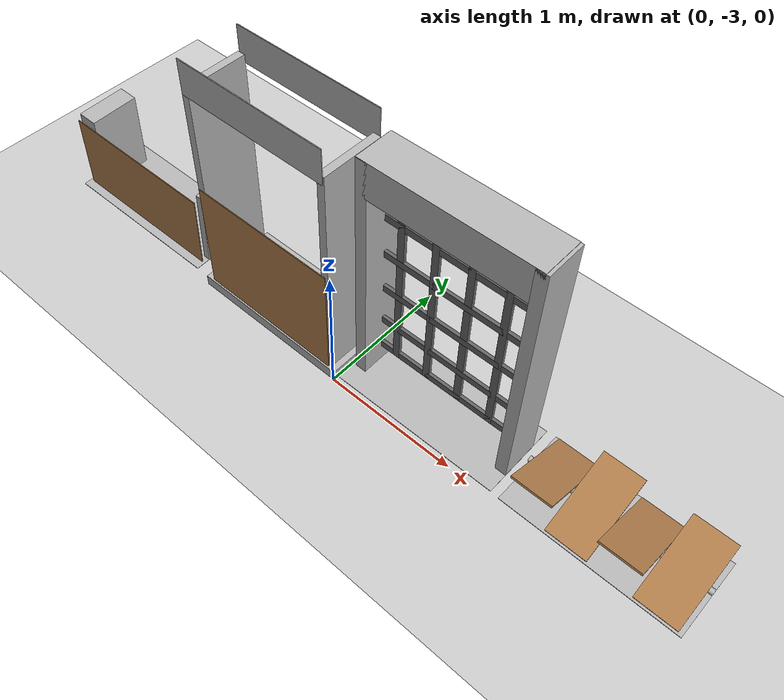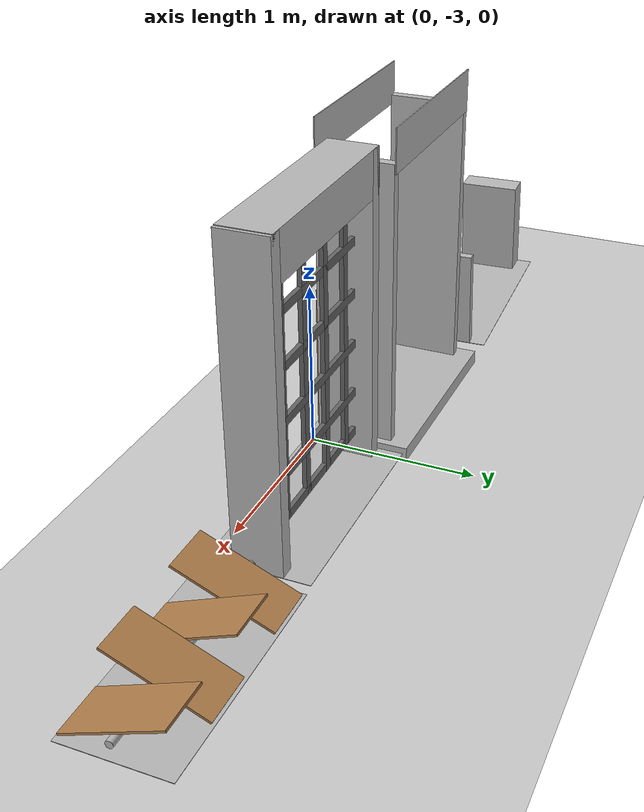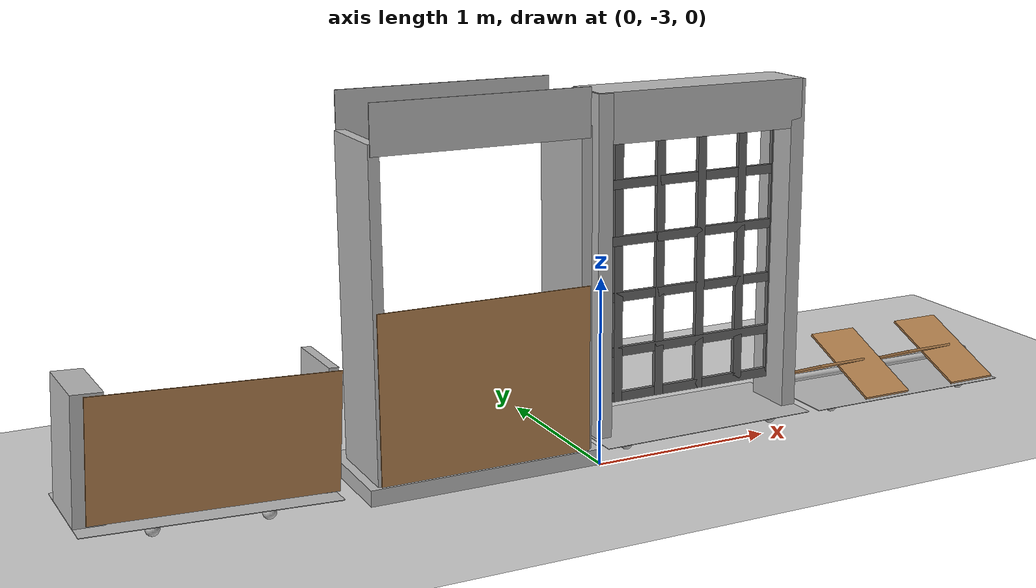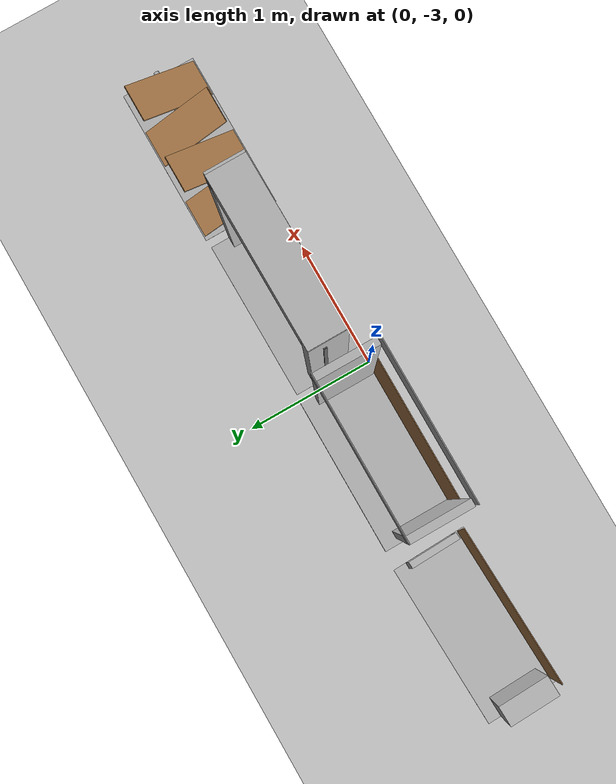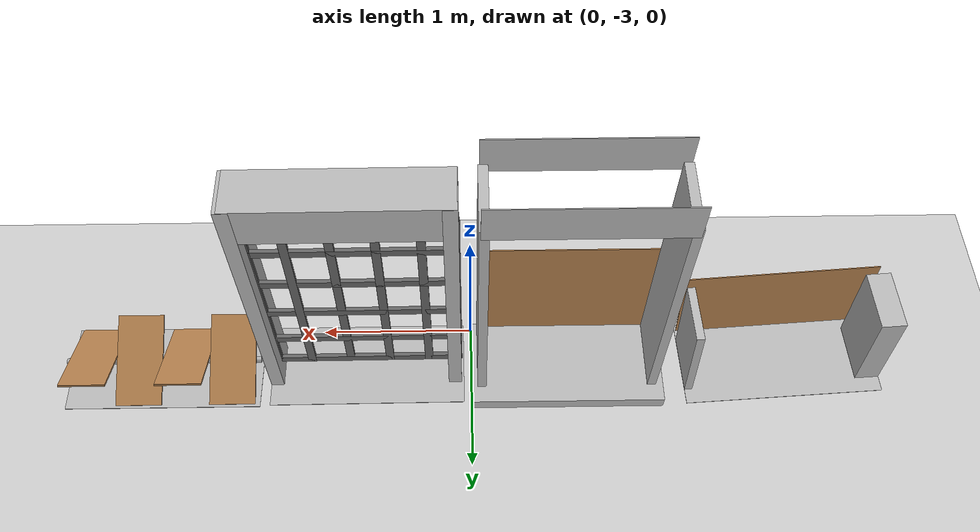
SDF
<sdf version="1.5">
 <world name="default">
  <model name="ground_plane">
   <static>1</static>
   <link name="link">
    <collision name="collision">
     <geometry><plane><normal>0 0 1</normal><size>100 100</size></plane></geometry>
     <surface><friction><ode><mu>100</mu><mu2>50</mu2></ode></friction></surface>
    </collision>
    <visual name="visual">
     <cast_shadows>0</cast_shadows>
     <geometry><plane><normal>0 0 1</normal><size>100 100</size></plane></geometry>
     <material>
      <script><uri>file://media/materials/scripts/gazebo.material</uri><name>Gazebo/Grey</name></script>
     </material>
    </visual>
   </link>
  </model>
  <model name="frc2016_sallyport">
   <link name="base">
    <inertial>
     <mass>50</mass>
     <pose>0 0 0.35406 0 -0 0</pose>
     <inertia><ixx>0.727808</ixx><ixy>0</ixy><ixz>0</ixz><iyy>1.77488</iyy><iyz>0</iyz><izz>1.64109</izz></inertia>
    </inertial>
    <visual name="platform">
     <pose>0 0 0.06974 0 -0 0</pose>
     <geometry><box><size>1.27 0.5969 0.003175</size></box></geometry>
    </visual>
    <collision name="platform">
     <pose>0 0 0.06974 0 -0 0</pose>
     <geometry><box><size>1.27 0.5969 0.003175</size></box></geometry>
    </collision>
    <visual name="left_column">
     <pose>-0.5588 0.00318 0.38876 0 -0 0</pose>
     <geometry><box><size>0.1524 0.38735 0.635</size></box></geometry>
    </visual>
    <collision name="left_column">
     <pose>-0.5588 0.00318 0.38876 0 -0 0</pose>
     <geometry><box><size>0.1524 0.38735 0.635</size></box></geometry>
    </collision>
    <visual name="right_column">
     <pose>0.6096 0.00635 0.38876 0 -0 0</pose>
     <geometry><box><size>0.0508 0.381 0.635</size></box></geometry>
    </visual>
    <collision name="right_column">
     <pose>0.6096 0.00635 0.38876 0 -0 0</pose>
     <geometry><box><size>0.0508 0.381 0.635</size></box></geometry>
    </collision>
    <visual name="castor1">
     <pose>-0.45886 0.15389 0.03487 0 -0 0</pose>
     <geometry><sphere><radius>0.03487</radius></sphere></geometry>
    </visual>
    <collision name="castor1">
     <pose>-0.45886 0.15389 0.03487 0 -0 0</pose>
     <geometry><sphere><radius>0.03487</radius></sphere></geometry>
    </collision>
    <visual name="castor2">
     <pose>-0.28117 -0.22559 0.03487 0 -0 0</pose>
     <geometry><sphere><radius>0.03487</radius></sphere></geometry>
    </visual>
    <collision name="castor2">
     <pose>-0.28117 -0.22559 0.03487 0 -0 0</pose>
     <geometry><sphere><radius>0.03487</radius></sphere></geometry>
    </collision>
    <visual name="castor3">
     <pose>0.27933 -0.2272 0.03487 0 -0 0</pose>
     <geometry><sphere><radius>0.03487</radius></sphere></geometry>
    </visual>
    <collision name="castor3">
     <pose>0.27933 -0.2272 0.03487 0 -0 0</pose>
     <geometry><sphere><radius>0.03487</radius></sphere></geometry>
    </collision>
    <visual name="castor4">
     <pose>0.4571 0.15424 0.03487 0 -0 0</pose>
     <geometry><sphere><radius>0.03487</radius></sphere></geometry>
    </visual>
    <collision name="castor4">
     <pose>0.4571 0.15424 0.03487 0 -0 0</pose>
     <geometry><sphere><radius>0.03487</radius></sphere></geometry>
    </collision>
   </link>
   <link name="door">
    <pose>0.02255 -0.24321 0.40332 0 -0 0</pose>
    <inertial>
     <pose>0 0 0 -1.5707 0 0</pose>
     <mass>2</mass>
     <inertia>
      <ixx>0.0619421</ixx>
      <ixy>0</ixy>
      <ixz>0</ixz>
      <iyy>0.246462</iyy>
      <iyz>0</iyz>
      <izz>0.30839</izz>
     </inertia>
    </inertial>
    <visual name="visual">
     <geometry><box><size>1.21603 0.00635 0.6096</size></box></geometry>
     <material><script><name>Gazebo/WoodFloor</name><uri>__default__</uri></script></material>
    </visual>
    <collision name="collision"><geometry><box><size>1.21603 0.00635 0.6096</size></box></geometry></collision>
   </link>
   <joint name="door_joint" type="revolute">
    <pose>-0.608015 0 0 0 -0 0</pose>
    <parent>base</parent>
    <child>door</child>
    <axis>
     <xyz>0 0 1</xyz>
     <limit><lower>-3.1415</lower><upper>0</upper></limit>
     <use_parent_model_frame>0</use_parent_model_frame>
     <dynamics><spring_reference>0</spring_reference><spring_stiffness>0</spring_stiffness></dynamics>
    </axis>
   </joint>
   <pose>-2.03495 -2.70877 0.023636 0.007784 0.054244 0.033158</pose>
  </model>
  <model name="frc2016_drawbridge">
   <link name="base">
    <inertial>
     <mass>10</mass>
     <pose>0 0 1 0 -0 0</pose>
     <inertia><ixx>3.64907</ixx><ixy>0</ixy><ixz>0</ixz><iyy>4.67075</iyy><iyz>0</iyz><izz>1.66649</izz></inertia>
    </inertial>
    <visual name="platform">
     <pose>0 0 0.0425 0 -0 0</pose>
     <geometry><box><size>1.27 0.5969 0.085</size></box></geometry>
    </visual>
    <collision name="platform">
     <pose>0 0 0.0425 0 -0 0</pose>
     <geometry><box><size>1.27 0.5969 0.085</size></box></geometry>
    </collision>
    <visual name="right_wall">
     <pose>0.55879 0.04444 0.889 0 -0 0</pose>
     <geometry><box><size>0.05715 0.45698 1.77165</size></box></geometry>
    </visual>
    <collision name="right_wall">
     <pose>0.55879 0.04444 0.889 0 -0 0</pose>
     <geometry><box><size>0.05715 0.45698 1.77165</size></box></geometry>
    </collision>
    <visual name="left_wall">
     <pose>-0.55879 0.04444 0.889 0 -0 0</pose>
     <geometry><box><size>0.05715 0.45698 1.77165</size></box></geometry>
    </visual>
    <collision name="left_wall">
     <pose>-0.55879 0.04444 0.889 0 -0 0</pose>
     <geometry><box><size>0.05715 0.45698 1.77165</size></box></geometry>
    </collision>
    <visual name="front_upper_wall">
     <pose>0 0.27611 1.84286 0 -0 0</pose>
     <geometry><box><size>1.1557 0.006347 0.254</size></box></geometry>
    </visual>
    <collision name="front_upper_wall">
     <pose>0 0.27611 1.84286 0 -0 0</pose>
     <geometry><box><size>1.1557 0.006347 0.254</size></box></geometry>
    </collision>
    <visual name="back_upper_wall">
     <pose>0 -0.18722 1.84286 0 -0 0</pose>
     <geometry><box><size>1.1557 0.006347 0.254</size></box></geometry>
    </visual>
    <collision name="back_upper_wall">
     <pose>0 -0.18722 1.84286 0 -0 0</pose>
     <geometry><box><size>1.1557 0.006347 0.254</size></box></geometry>
    </collision>
   </link>
   <link name="bridge">
    <pose>0 0.28245 0.50577 0 -0 0</pose>
    <inertial>
     <mass>2</mass>
     <pose>0 -0.28245 -0.50577 0 -0 0</pose>
     <inertia>
      <ixx>0.139361</ixx>
      <ixy>0</ixy>
      <ixz>0</ixz>
      <iyy>0.357088</iyy>
      <iyz>0</iyz>
      <izz>0.217741</izz>
     </inertia>
    </inertial>
    <visual name="visual">
     <geometry><box><size>1.14298 0.006347 0.9144</size></box></geometry>
     <material><script><name>Gazebo/WoodFloor</name><uri>__default__</uri></script></material>
    </visual>
    <collision name="collision"><geometry><box><size>1.14298 0.006347 0.9144</size></box></geometry></collision>
   </link>
   <joint name="bridge_joint" type="revolute">
    <pose>0 0 -0.4172 0 -0 0</pose>
    <parent>base</parent>
    <child>bridge</child>
    <axis>
     <xyz>1 0 0</xyz>
     <limit><lower>-2</lower><upper>0</upper></limit>
     <use_parent_model_frame>0</use_parent_model_frame>
     <dynamics><spring_reference>0</spring_reference><spring_stiffness>0</spring_stiffness></dynamics>
    </axis>
   </joint>
   <pose>-0.627294 -2.70396 0 0 -1e-06 3.14127</pose>
  </model>
  <model name="frc2016_portcullis_0">
   <link name="base">
    <inertial>
     <mass>50</mass>
     <pose>0 0 1.02941 0 -0 0</pose>
     <inertia><ixx>3.81711</ixx><ixy>0</ixy><ixz>0</ixz><iyy>4.87698</iyy><iyz>0</iyz><izz>1.6283</izz></inertia>
    </inertial>
    <visual name="platform">
     <pose>0 0 0.07284 0 -0 0</pose>
     <geometry><box><size>1.27 0.5842 0.003175</size></box></geometry>
    </visual>
    <collision name="platform">
     <pose>0 0 0.07284 0 -0 0</pose>
     <geometry><box><size>1.27 0.5842 0.003175</size></box></geometry>
    </collision>
    <visual name="left_column">
     <pose>0.59284 0 0.99042 0 -0 0</pose>
     <geometry><box><size>0.08375 0.28575 1.83198</size></box></geometry>
    </visual>
    <collision name="left_column">
     <pose>0.59284 0 0.99042 0 -0 0</pose>
     <geometry><box><size>0.08375 0.28575 1.83198</size></box></geometry>
    </collision>
    <visual name="right_column">
     <pose>-0.57759 0 0.99042 0 -0 0</pose>
     <geometry><box><size>0.08375 0.28575 1.83198</size></box></geometry>
    </visual>
    <collision name="right_column">
     <pose>-0.57759 0 0.99042 0 -0 0</pose>
     <geometry><box><size>0.08375 0.28575 1.83198</size></box></geometry>
    </collision>
    <visual name="top">
     <pose>-0.00034 0 1.77722 0 -0 0</pose>
     <geometry><box><size>1.22962 0.28575 0.26657</size></box></geometry>
    </visual>
    <collision name="top">
     <pose>-0.00034 0 1.77722 0 -0 0</pose>
     <geometry><box><size>1.22962 0.28575 0.26657</size></box></geometry>
    </collision>
    <visual name="castor1">
     <pose>-0.45651 -0.16234 0.03272 0 -0 0</pose>
     <geometry><sphere><radius>0.03272</radius></sphere></geometry>
    </visual>
    <collision name="castor1">
     <pose>-0.45651 -0.16234 0.03272 0 -0 0</pose>
     <geometry><sphere><radius>0.03272</radius></sphere></geometry>
    </collision>
    <visual name="castor2">
     <pose>-0.27883 0.21836 0.03272 0 -0 0</pose>
     <geometry><sphere><radius>0.03272</radius></sphere></geometry>
    </visual>
    <collision name="castor2">
     <pose>-0.27883 0.21836 0.03272 0 -0 0</pose>
     <geometry><sphere><radius>0.03272</radius></sphere></geometry>
    </collision>
    <visual name="castor3">
     <pose>0.28083 0.21906 0.03272 0 -0 0</pose>
     <geometry><sphere><radius>0.03272</radius></sphere></geometry>
    </visual>
    <collision name="castor3">
     <pose>0.28083 0.21906 0.03272 0 -0 0</pose>
     <geometry><sphere><radius>0.03272</radius></sphere></geometry>
    </collision>
    <visual name="castor4">
     <pose>0.45871 -0.16186 0.03272 0 -0 0</pose>
     <geometry><sphere><radius>0.03272</radius></sphere></geometry>
    </visual>
    <collision name="castor4">
     <pose>0.45871 -0.16186 0.03272 0 -0 0</pose>
     <geometry><sphere><radius>0.03272</radius></sphere></geometry>
    </collision>
   </link>
   <link name="gate">
    <pose>-0.0287 0.02885 0.93327 0 -0 0</pose>
    <inertial>
     <mass>2</mass>
     <inertia><ixx>3.81711</ixx><ixy>0</ixy><ixz>0</ixz><iyy>4.87698</iyy><iyz>0</iyz><izz>1.6283</izz></inertia>
    </inertial>
    <collision name="collision"><geometry><box><size>1.1938 0.02496 1.45732</size></box></geometry></collision>
    <visual name="horz_1">
     <pose>0 0 -0.70326 0 -0 0</pose>
     <geometry><box><size>1.1938 0.02496 0.0508</size></box></geometry>
     <material><ambient>0.4 0.4 0.4 1</ambient><diffuse>0.4 0.4 0.4 1</diffuse></material>
    </visual>
    <visual name="horz_2">
     <pose>0 0 -0.44926 0 -0 0</pose>
     <geometry><box><size>1.1938 0.02496 0.0508</size></box></geometry>
     <material><ambient>0.4 0.4 0.4 1</ambient><diffuse>0.4 0.4 0.4 1</diffuse></material>
    </visual>
    <visual name="horz_3">
     <pose>0 0 -0.14517 0 -0 0</pose>
     <geometry><box><size>1.1938 0.02496 0.0508</size></box></geometry>
     <material><ambient>0.4 0.4 0.4 1</ambient><diffuse>0.4 0.4 0.4 1</diffuse></material>
    </visual>
    <visual name="horz_4">
     <pose>0 0 0.16034 0 -0 0</pose>
     <geometry><box><size>1.1938 0.02496 0.0508</size></box></geometry>
     <material><ambient>0.4 0.4 0.4 1</ambient><diffuse>0.4 0.4 0.4 1</diffuse></material>
    </visual>
    <visual name="horz_5">
     <pose>0 0 0.46514 0 -0 0</pose>
     <geometry><box><size>1.1938 0.02496 0.0508</size></box></geometry>
     <material><ambient>0.4 0.4 0.4 1</ambient><diffuse>0.4 0.4 0.4 1</diffuse></material>
    </visual>
    <visual name="horz_6">
     <pose>0 0 0.72994 0 -0 0</pose>
     <geometry><box><size>1.1938 0.02496 0.0508</size></box></geometry>
     <material><ambient>0.4 0.4 0.4 1</ambient><diffuse>0.4 0.4 0.4 1</diffuse></material>
    </visual>
    <visual name="vert_1">
     <pose>-0.58448 0 0 0 -0 0</pose>
     <geometry><box><size>0.02495 0.02496 1.45732</size></box></geometry>
     <material><ambient>0.4 0.4 0.4 1</ambient><diffuse>0.4 0.4 0.4 1</diffuse></material>
    </visual>
    <visual name="vert_2">
     <pose>-0.38128 0 0 0 -0 0</pose>
     <geometry><box><size>0.0508 0.02496 1.45732</size></box></geometry>
     <material><ambient>0.4 0.4 0.4 1</ambient><diffuse>0.4 0.4 0.4 1</diffuse></material>
    </visual>
    <visual name="vert_3">
     <pose>-0.12728 0 0 0 -0 0</pose>
     <geometry><box><size>0.0508 0.02496 1.45732</size></box></geometry>
     <material><ambient>0.4 0.4 0.4 1</ambient><diffuse>0.4 0.4 0.4 1</diffuse></material>
    </visual>
    <visual name="vert_4">
     <pose>0.12672 0 0 0 -0 0</pose>
     <geometry><box><size>0.0508 0.02496 1.45732</size></box></geometry>
     <material><ambient>0.4 0.4 0.4 1</ambient><diffuse>0.4 0.4 0.4 1</diffuse></material>
    </visual>
    <visual name="vert_5">
     <pose>0.38072 0 0 0 -0 0</pose>
     <geometry><box><size>0.0508 0.02496 1.45732</size></box></geometry>
     <material><ambient>0.4 0.4 0.4 1</ambient><diffuse>0.4 0.4 0.4 1</diffuse></material>
    </visual>
    <visual name="vert_6">
     <pose>0.58392 0 0 0 -0 0</pose>
     <geometry><box><size>0.02495 0.02496 1.45732</size></box></geometry>
     <material><ambient>0.4 0.4 0.4 1</ambient><diffuse>0.4 0.4 0.4 1</diffuse></material>
    </visual>
   </link>
   <joint name="joint" type="prismatic">
    <parent>base</parent>
    <child>gate</child>
    <axis>
     <xyz>0 0 1</xyz>
     <limit><lower>0</lower><upper>1</upper></limit>
     <use_parent_model_frame>0</use_parent_model_frame>
     <dynamics><spring_reference>0</spring_reference><spring_stiffness>0</spring_stiffness></dynamics>
    </axis>
   </joint>
   <pose>0.684433 -2.70317 0 1e-06 -0 0.005163</pose>
  </model>
  <model name="frc2016_chevaldefrise">
   <link name="base">
    <inertial>
     <mass>10</mass>
     <pose>0 0 0.15672 0 -0 0</pose>
     <inertia><ixx>0.380221</ixx><ixy>0</ixy><ixz>0</ixz><iyy>1.43365</iyy><iyz>0</iyz><izz>1.64745</izz></inertia>
    </inertial>
    <visual name="platform">
     <pose>0 0 0.06968 0 -0 0</pose>
     <geometry><box><size>1.27 0.5969 0.003175</size></box></geometry>
    </visual>
    <collision name="platform">
     <pose>0 0 0.06968 0 -0 0</pose>
     <geometry><box><size>1.27 0.5969 0.003175</size></box></geometry>
    </collision>
    <visual name="bar">
     <pose>0 0 0.16855 0 1.5707 0</pose>
     <geometry><cylinder><radius>0.02108</radius><length>1.273</length></cylinder></geometry>
    </visual>
    <collision name="bar">
     <pose>0 0 0.16855 0 1.5707 0</pose>
     <geometry><cylinder><radius>0.02108</radius><length>1.27</length></cylinder></geometry>
    </collision>
    <visual name="castor1">
     <pose>-0.45653 -0.16581 0.03175 0 -0 0</pose>
     <geometry><sphere><radius>0.03175</radius></sphere></geometry>
    </visual>
    <collision name="castor1">
     <pose>-0.45653 -0.16581 0.03175 0 -0 0</pose>
     <geometry><sphere><radius>0.03175</radius></sphere></geometry>
    </collision>
    <visual name="castor2">
     <pose>-0.27855 0.21408 0.03175 0 -0 0</pose>
     <geometry><sphere><radius>0.03175</radius></sphere></geometry>
    </visual>
    <collision name="castor2">
     <pose>-0.27855 0.21408 0.03175 0 -0 0</pose>
     <geometry><sphere><radius>0.03175</radius></sphere></geometry>
    </collision>
    <visual name="castor3">
     <pose>0.28191 0.21419 0.03175 0 -0 0</pose>
     <geometry><sphere><radius>0.03175</radius></sphere></geometry>
    </visual>
    <collision name="castor3">
     <pose>0.28191 0.21419 0.03175 0 -0 0</pose>
     <geometry><sphere><radius>0.03175</radius></sphere></geometry>
    </collision>
    <visual name="castor4">
     <pose>0.45965 -0.16602 0.03175 0 -0 0</pose>
     <geometry><sphere><radius>0.03175</radius></sphere></geometry>
    </visual>
    <collision name="castor4">
     <pose>0.45965 -0.16602 0.03175 0 -0 0</pose>
     <geometry><sphere><radius>0.03175</radius></sphere></geometry>
    </collision>
   </link>
   <link name="slant1">
    <pose>-0.4572 0.01307 0.1997 -0.39732 0 0</pose>
    <inertial>
     <pose>0 0.1 0 0 -0 0</pose>
     <mass>2</mass>
     <inertia>
      <ixx>0.0606857</ixx>
      <ixy>0</ixy>
      <ixz>0</ixz>
      <iyy>0.0148723</iyy>
      <iyz>0</iyz>
      <izz>0.0755042</izz>
     </inertia>
    </inertial>
    <visual name="visual">
     <geometry><box><size>0.29845 0.593285 0.0127</size></box></geometry>
     <material><script><name>Gazebo/WoodFloor</name><uri>__default__</uri></script></material>
    </visual>
    <collision name="collision"><geometry><box><size>0.29845 0.593285 0.0127</size></box></geometry></collision>
   </link>
   <link name="slant2">
    <pose>-0.1524 -0.01307 0.1997 0.39732 -0 0</pose>
    <inertial>
     <mass>2</mass>
     <pose>0 -0.1 0 0 -0 0</pose>
     <inertia>
      <ixx>0.0606857</ixx>
      <ixy>0</ixy>
      <ixz>0</ixz>
      <iyy>0.0148723</iyy>
      <iyz>0</iyz>
      <izz>0.0755042</izz>
     </inertia>
    </inertial>
    <visual name="visual">
     <geometry><box><size>0.29845 0.593285 0.0127</size></box></geometry>
     <material><script><name>Gazebo/WoodFloor</name><uri>__default__</uri></script></material>
    </visual>
    <collision name="collision"><geometry><box><size>0.29845 0.593285 0.0127</size></box></geometry></collision>
   </link>
   <link name="slant3">
    <pose>0.1524 0.01307 0.1997 -0.39732 0 0</pose>
    <inertial>
     <pose>0 0.1 0 0 -0 0</pose>
     <mass>2</mass>
     <inertia>
      <ixx>0.0606857</ixx>
      <ixy>0</ixy>
      <ixz>0</ixz>
      <iyy>0.0148723</iyy>
      <iyz>0</iyz>
      <izz>0.0755042</izz>
     </inertia>
    </inertial>
    <visual name="visual">
     <geometry><box><size>0.29845 0.593285 0.0127</size></box></geometry>
     <material><script><name>Gazebo/WoodFloor</name><uri>__default__</uri></script></material>
    </visual>
    <collision name="collision"><geometry><box><size>0.29845 0.593285 0.0127</size></box></geometry></collision>
   </link>
   <link name="slant4">
    <pose>0.4572 -0.01307 0.1997 0.39732 -0 0</pose>
    <inertial>
     <pose>0 -0.1 0 0 -0 0</pose>
     <mass>2</mass>
     <inertia>
      <ixx>0.0606857</ixx>
      <ixy>0</ixy>
      <ixz>0</ixz>
      <iyy>0.0148723</iyy>
      <iyz>0</iyz>
      <izz>0.0755042</izz>
     </inertia>
    </inertial>
    <visual name="visual">
     <geometry><box><size>0.29845 0.593285 0.0127</size></box></geometry>
     <material><script><name>Gazebo/WoodFloor</name><uri>__default__</uri></script></material>
    </visual>
    <collision name="collision"><geometry><box><size>0.29845 0.593285 0.0127</size></box></geometry></collision>
   </link>
   <joint name="slant1_joint" type="revolute">
    <parent>base</parent>
    <child>slant1</child>
    <axis>
     <xyz>1 0 0</xyz>
     <limit><lower>0</lower><upper>1.5707</upper></limit>
     <use_parent_model_frame>0</use_parent_model_frame>
     <dynamics><spring_reference>0</spring_reference><spring_stiffness>0</spring_stiffness></dynamics>
    </axis>
   </joint>
   <joint name="slant2_joint" type="revolute">
    <parent>base</parent>
    <child>slant2</child>
    <axis>
     <xyz>1 0 0</xyz>
     <limit><lower>-1.5707</lower><upper>0</upper></limit>
     <use_parent_model_frame>0</use_parent_model_frame>
     <dynamics><spring_reference>0</spring_reference><spring_stiffness>0</spring_stiffness></dynamics>
    </axis>
   </joint>
   <joint name="slant3_joint" type="revolute">
    <parent>base</parent>
    <child>slant3</child>
    <axis>
     <xyz>1 0 0</xyz>
     <limit><lower>0</lower><upper>1.5707</upper></limit>
     <use_parent_model_frame>0</use_parent_model_frame>
     <dynamics><spring_reference>0</spring_reference><spring_stiffness>0</spring_stiffness></dynamics>
    </axis>
   </joint>
   <joint name="slant4_joint" type="revolute">
    <parent>base</parent>
    <child>slant4</child>
    <axis>
     <xyz>1 0 0</xyz>
     <limit><lower>-1.5707</lower><upper>0</upper></limit>
     <use_parent_model_frame>0</use_parent_model_frame>
     <dynamics><spring_reference>0</spring_reference><spring_stiffness>0</spring_stiffness></dynamics>
    </axis>
   </joint>
   <pose>2.01746 -2.69804 -0 0 -0 0</pose>
  </model>
 </world>
</sdf>
